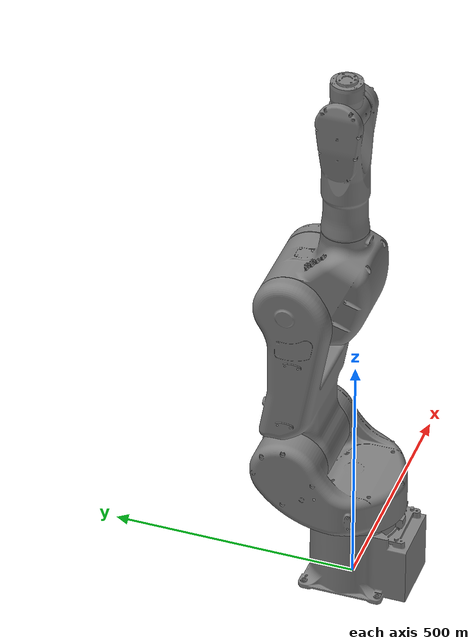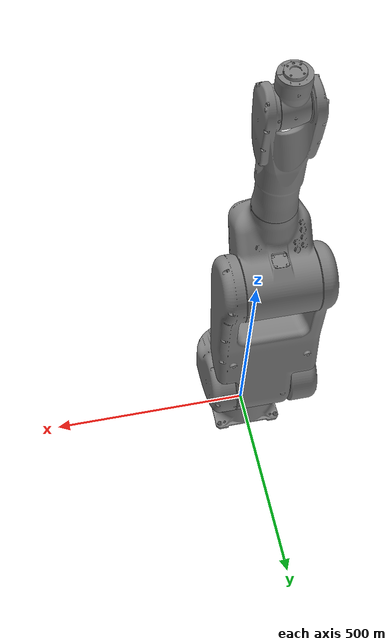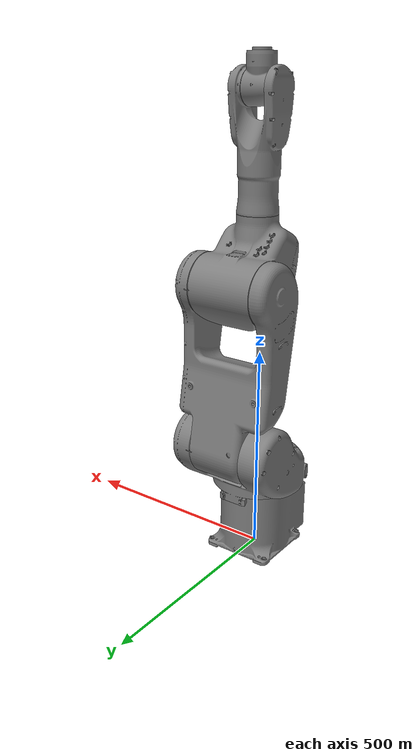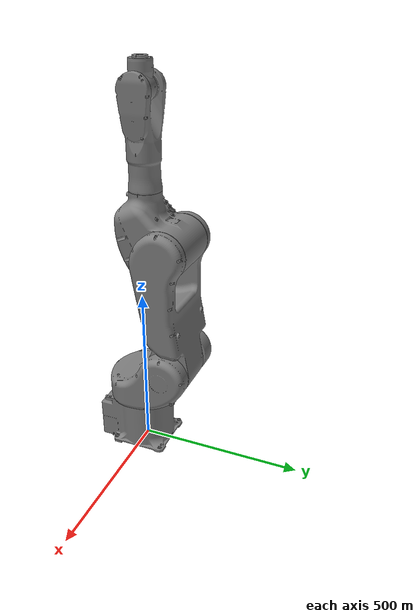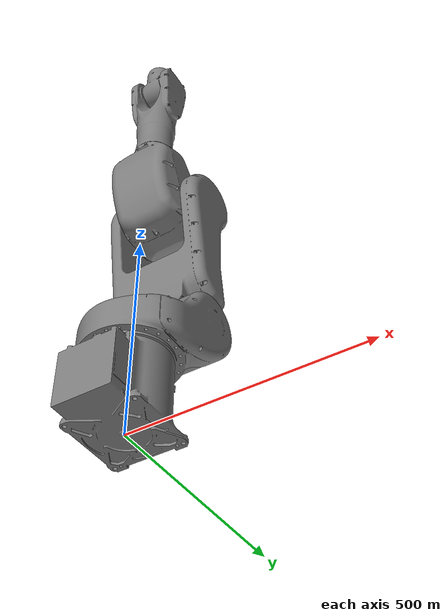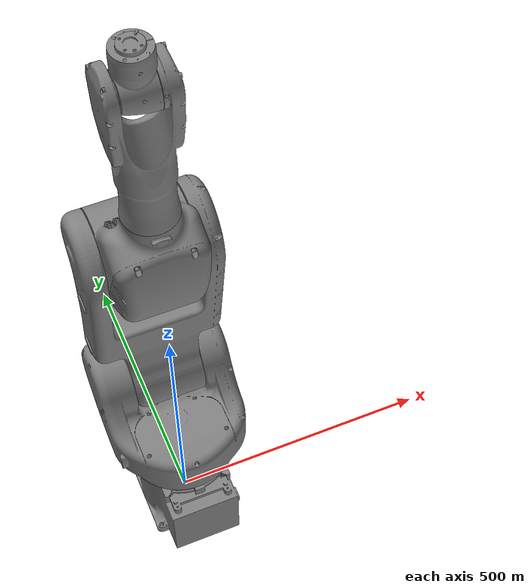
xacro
<?xml version="1.0" ?>
<robot name="rs005l" xmlns:xacro="http://ros.org/wiki/xacro">
  <xacro:include filename="$(find kawasaki)/urdf/rs005l_macro.xacro" />
  <xacro:rs005l prefix="" />

  <link name="world" />
  <joint name="joint_w" type="fixed">
    <parent link="world" />
	<child link="base_link" />
    <origin xyz="0 0 0" rpy="0 0 0" />
  </joint>

</robot>

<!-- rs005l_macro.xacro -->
<robot xmlns:xacro="http://ros.org/wiki/xacro">
  <xacro:macro name="rs005l" params="prefix">

    <!-- Properties -->
    <material name="blue">
      <color rgba="0.5 0.5 0.5 1" />
    </material>
    <material name="white">
      <color rgba="0.95294 0.95294 0.95294 1" />
    </material>

    <!-- link list -->
    <link name="${prefix}base_link">
      <visual>
        <geometry>
          <mesh filename="package://kawasaki/meshes/rs005l/base_link.stl" scale="1000 1000 1000" />
        </geometry>
        <material name="blue"/>
      </visual>
      <collision>
        <geometry>
          <mesh filename="package://kawasaki/meshes/rs005l/base_link.stl" scale="1000 1000 1000" />
        </geometry>
      </collision>
    </link>
    <link name="${prefix}link_1_s">
      <visual>
        <geometry>
          <mesh filename="package://kawasaki/meshes/rs005l/link_1_s.stl" scale="1000 1000 1000" />
        </geometry>
        <material name="blue"/>
      </visual>
      <collision>
        <geometry>
          <mesh filename="package://kawasaki/meshes/rs005l/link_1_s.stl" scale="1000 1000 1000" />
        </geometry>
      </collision>
    </link>
    <link name="${prefix}link_2_l">
      <visual>
        <geometry>
          <mesh filename="package://kawasaki/meshes/rs005l/link_2_l.stl" scale="1000 1000 1000" />
        </geometry>
        <material name="blue"/>
      </visual>
      <collision>
        <geometry>
          <mesh filename="package://kawasaki/meshes/rs005l/link_2_l.stl" scale="1000 1000 1000" />
        </geometry>
      </collision>
    </link>
    <link name="${prefix}link_3_u">
      <visual>
        <geometry>
          <mesh filename="package://kawasaki/meshes/rs005l/link_3_u.stl" scale="1000 1000 1000" />
        </geometry>
        <material name="blue"/>
      </visual>
      <collision>
        <geometry>
          <mesh filename="package://kawasaki/meshes/rs005l/link_3_u.stl" scale="1000 1000 1000" />
        </geometry>
      </collision>
    </link>
    <link name="${prefix}link_4_r">
      <visual>
        <geometry>
          <mesh filename="package://kawasaki/meshes/rs005l/link_4_r.stl" scale="1000 1000 1000" />
        </geometry>
        <material name="blue"/>
      </visual>
      <collision>
        <geometry>
          <mesh filename="package://kawasaki/meshes/rs005l/link_4_r.stl" scale="1000 1000 1000" />
        </geometry>
      </collision>
    </link>
    <link name="${prefix}link_5_b">
      <visual>
        <geometry>
          <mesh filename="package://kawasaki/meshes/rs005l/link_5_b.stl" scale="1000 1000 1000" />
        </geometry>
        <material name="blue"/>
      </visual>
      <collision>
        <geometry>
          <mesh filename="package://kawasaki/meshes/rs005l/link_5_b.stl" scale="1000 1000 1000" />
        </geometry>
      </collision>
    </link>
    <link name="${prefix}link_6_t">
      <visual>
        <geometry>
          <mesh filename="package://kawasaki/meshes/rs005l/link_6_t.stl" scale="1000 1000 1000" />
        </geometry>
        <material name="blue"/>
      </visual>
      <collision>
        <geometry>
          <mesh filename="package://kawasaki/meshes/rs005l/link_6_t.stl" scale="1000 1000 1000" />
       </geometry>
      </collision>
    </link>
    <link name="${prefix}tool0"/>
    <!-- end of link list -->

    <!-- joint list -->
    <joint name="${prefix}joint_1_s" type="revolute">
      <parent link="${prefix}base_link"/>
      <child link="${prefix}link_1_s"/>
      <origin xyz="0 0 295" rpy="0 0 0" />
      <axis xyz="0 0 -1" />
      <limit lower="${radians(-180)}" upper="${radians(180)}" effort="1000.0" velocity="${radians(300)}"/>
    </joint>
    <joint name="${prefix}joint_2_l" type="revolute">
      <parent link="${prefix}link_1_s"/>
      <child link="${prefix}link_2_l"/>
      <origin xyz="0 105 0" rpy="0 0 0" />
      <axis xyz="-1 0 0" />
      <limit lower="${radians(-80)}" upper="${radians(135)}" effort="1000.0" velocity="${radians(300)}"/>
    </joint>
    <joint name="${prefix}joint_3_u" type="revolute">
      <parent link="${prefix}link_2_l"/>
      <child link="${prefix}link_3_u"/>
      <origin xyz="0 0 380" rpy="0 0 0" />
      <axis xyz="1 0 0" />
      <limit lower="${radians(-172)}" upper="${radians(118)}" effort="1000.0" velocity="${radians(300)}"/>
    </joint>
    <joint name="${prefix}joint_4_r" type="revolute">
      <parent link="${prefix}link_3_u"/>
      <child link="${prefix}link_4_r"/>
      <origin xyz="0 -80 410" rpy="0 0 0" />
      <axis xyz="0 0 1" />
      <limit lower="${radians(-360)}" upper="${radians(360)}" effort="1000.0" velocity="${radians(460)}"/>
    </joint>
    <joint name="${prefix}joint_5_b" type="revolute">
      <parent link="${prefix}link_4_r"/>
      <child link="${prefix}link_5_b"/>
      <origin xyz="0 0 0" rpy="0 0 0" />
      <axis xyz="1 0 0" />
      <limit lower="${radians(-145)}" upper="${radians(145)}" effort="1000.0" velocity="${radians(460)}"/>
    </joint>
    <joint name="${prefix}joint_6_t" type="revolute">
      <parent link="${prefix}link_5_b"/>
      <child link="${prefix}link_6_t"/>
      <origin xyz="0 0 78" rpy="0 0 0" />
      <axis xyz="0 0 1" />
      <limit lower="${radians(-360)}" upper="${radians(360)}" effort="1000.0" velocity="${radians(740)}"/>
    </joint>
    <joint name="${prefix}joint_6_t-tool0" type="fixed">
      <origin xyz="0 0 0" rpy="0 0 0"/>
      <parent link="${prefix}link_6_t"/>
      <child link="${prefix}tool0"/>
    </joint>
    <!-- end of joint list -->

    <!-- ROS base_link to Robot Manufacturer World Coordinates transform -->
    <link name="${prefix}base" />
    <joint name="${prefix}base_link-base" type="fixed">
      <origin xyz="0 0 0" rpy="0 0 0"/>
      <parent link="${prefix}base_link"/>
      <child link="${prefix}base"/>
    </joint>
  </xacro:macro>
</robot>
